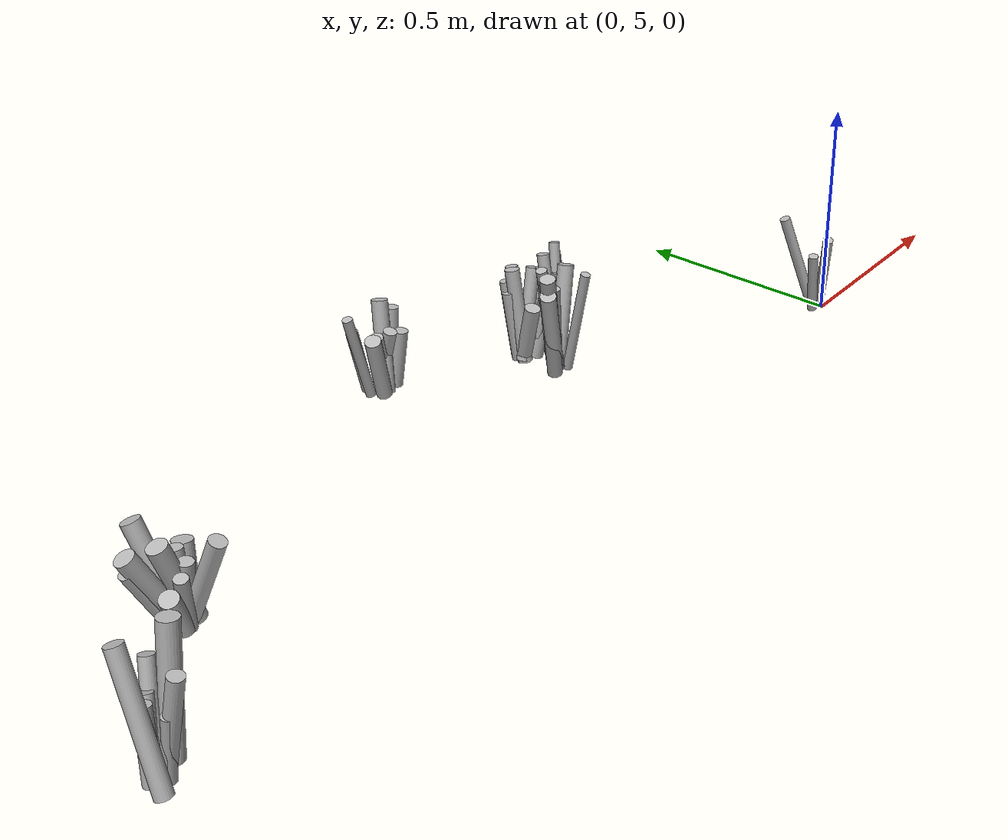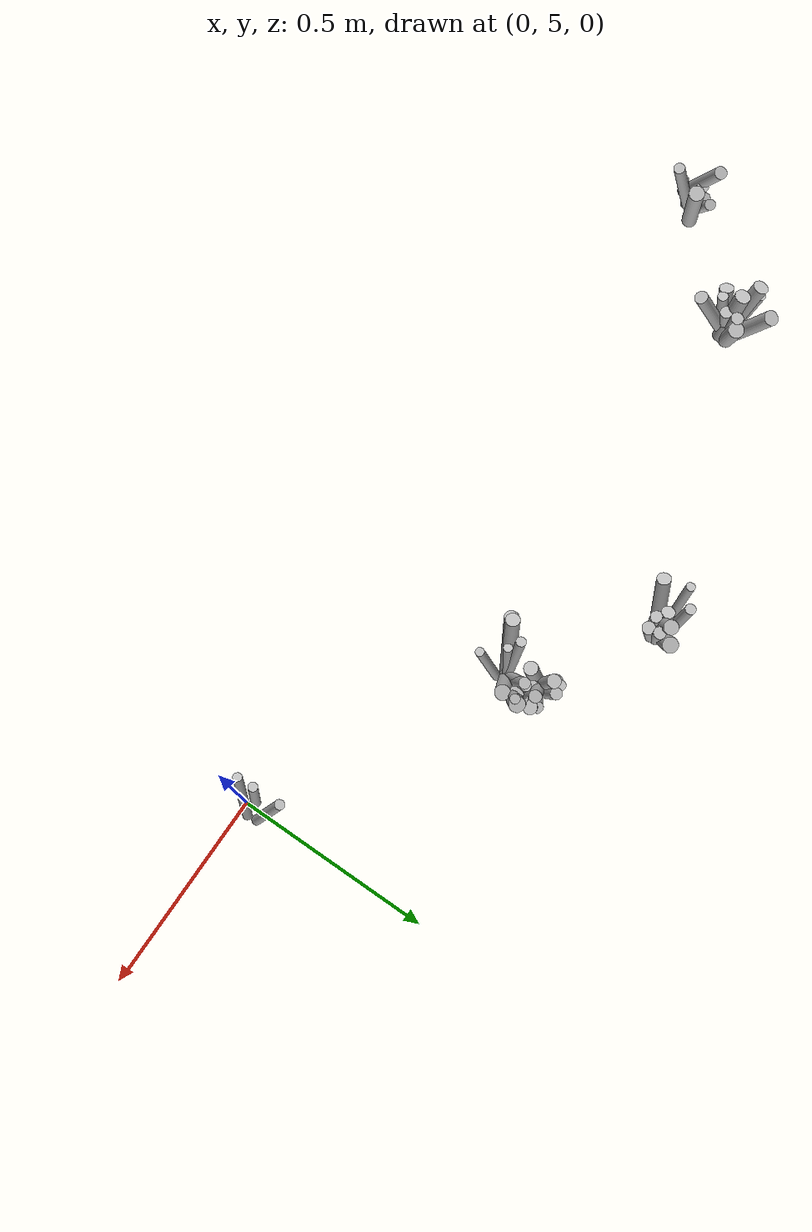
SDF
<sdf version="1.6">
 <world name="default">
  <model name="tussocks">
   <static>true</static>
   <link name="tuft11_0">
    <pose>-0.0070 5.0717 0.1087 0 0.3280 2.3232</pose>
    <visual name="tuft11_0_v">
     <geometry><cylinder><radius>0.0124</radius><length>0.2362</length></cylinder></geometry>
     <material>
      <script>
       <uri>model://bushfire/materials/scripts</uri>
       <uri>model://bushfire/materials/textures</uri>
       <name>Bushfire/Foliage2</name>
      </script>
     </material>
    </visual>
   </link>
   <link name="tuft11_5">
    <pose>-0.0038 5.0002 0.0973 0 0.3164 3.7831</pose>
    <visual name="tuft11_5_v">
     <geometry><cylinder><radius>0.0117</radius><length>0.2114</length></cylinder></geometry>
     <material>
      <script>
       <uri>model://bushfire/materials/scripts</uri>
       <uri>model://bushfire/materials/textures</uri>
       <name>Bushfire/Tussock</name>
      </script>
     </material>
    </visual>
   </link>
   <link name="tuft11_10">
    <pose>-0.0233 5.0163 0.0705 0 0.1381 3.3470</pose>
    <visual name="tuft11_10_v">
     <geometry><cylinder><radius>0.0118</radius><length>0.1532</length></cylinder></geometry>
     <material>
      <script>
       <uri>model://bushfire/materials/scripts</uri>
       <uri>model://bushfire/materials/textures</uri>
       <name>Bushfire/Foliage2</name>
      </script>
     </material>
    </visual>
   </link>
   <link name="tuft13_0">
    <pose>-1.6560 5.2935 0.0613 0 0.1201 5.4961</pose>
    <visual name="tuft13_0_v">
     <geometry><cylinder><radius>0.0158</radius><length>0.1332</length></cylinder></geometry>
     <material>
      <script>
       <uri>model://bushfire/materials/scripts</uri>
       <uri>model://bushfire/materials/textures</uri>
       <name>Bushfire/Tussock</name>
      </script>
     </material>
    </visual>
   </link>
   <link name="tuft13_1">
    <pose>-1.6664 5.2997 0.0851 0 0.2339 2.9496</pose>
    <visual name="tuft13_1_v">
     <geometry><cylinder><radius>0.0200</radius><length>0.1849</length></cylinder></geometry>
     <material>
      <script>
       <uri>model://bushfire/materials/scripts</uri>
       <uri>model://bushfire/materials/textures</uri>
       <name>Bushfire/Foliage2</name>
      </script>
     </material>
    </visual>
   </link>
   <link name="tuft13_2">
    <pose>-1.6322 5.3239 0.0651 0 0.2160 0.7160</pose>
    <visual name="tuft13_2_v">
     <geometry><cylinder><radius>0.0198</radius><length>0.1416</length></cylinder></geometry>
     <material>
      <script>
       <uri>model://bushfire/materials/scripts</uri>
       <uri>model://bushfire/materials/textures</uri>
       <name>Bushfire/Foliage2</name>
      </script>
     </material>
    </visual>
   </link>
   <link name="tuft13_3">
    <pose>-1.6973 5.2674 0.0534 0 0.4145 3.8553</pose>
    <visual name="tuft13_3_v">
     <geometry><cylinder><radius>0.0183</radius><length>0.1162</length></cylinder></geometry>
     <material>
      <script>
       <uri>model://bushfire/materials/scripts</uri>
       <uri>model://bushfire/materials/textures</uri>
       <name>Bushfire/Tussock</name>
      </script>
     </material>
    </visual>
   </link>
   <link name="tuft13_4">
    <pose>-1.7075 5.3191 0.0684 0 0.3843 2.7265</pose>
    <visual name="tuft13_4_v">
     <geometry><cylinder><radius>0.0184</radius><length>0.1487</length></cylinder></geometry>
     <material>
      <script>
       <uri>model://bushfire/materials/scripts</uri>
       <uri>model://bushfire/materials/textures</uri>
       <name>Bushfire/Foliage2</name>
      </script>
     </material>
    </visual>
   </link>
   <link name="tuft13_5">
    <pose>-1.6549 5.3085 0.0635 0 0.2851 1.0005</pose>
    <visual name="tuft13_5_v">
     <geometry><cylinder><radius>0.0128</radius><length>0.1381</length></cylinder></geometry>
     <material>
      <script>
       <uri>model://bushfire/materials/scripts</uri>
       <uri>model://bushfire/materials/textures</uri>
       <name>Bushfire/Tussock</name>
      </script>
     </material>
    </visual>
   </link>
   <link name="tuft13_6">
    <pose>-1.6519 5.3123 0.0672 0 0.1304 0.9742</pose>
    <visual name="tuft13_6_v">
     <geometry><cylinder><radius>0.0157</radius><length>0.1461</length></cylinder></geometry>
     <material>
      <script>
       <uri>model://bushfire/materials/scripts</uri>
       <uri>model://bushfire/materials/textures</uri>
       <name>Bushfire/Tussock</name>
      </script>
     </material>
    </visual>
   </link>
   <link name="tuft13_7">
    <pose>-1.6764 5.2698 0.0610 0 0.1987 4.2251</pose>
    <visual name="tuft13_7_v">
     <geometry><cylinder><radius>0.0136</radius><length>0.1325</length></cylinder></geometry>
     <material>
      <script>
       <uri>model://bushfire/materials/scripts</uri>
       <uri>model://bushfire/materials/textures</uri>
       <name>Bushfire/Foliage2</name>
      </script>
     </material>
    </visual>
   </link>
   <link name="tuft13_8">
    <pose>-1.7041 5.3151 0.0845 0 0.3787 2.7772</pose>
    <visual name="tuft13_8_v">
     <geometry><cylinder><radius>0.0196</radius><length>0.1837</length></cylinder></geometry>
     <material>
      <script>
       <uri>model://bushfire/materials/scripts</uri>
       <uri>model://bushfire/materials/textures</uri>
       <name>Bushfire/Foliage2</name>
      </script>
     </material>
    </visual>
   </link>
   <link name="tuft13_9">
    <pose>-1.6700 5.3560 0.0903 0 0.3757 1.7237</pose>
    <visual name="tuft13_9_v">
     <geometry><cylinder><radius>0.0192</radius><length>0.1963</length></cylinder></geometry>
     <material>
      <script>
       <uri>model://bushfire/materials/scripts</uri>
       <uri>model://bushfire/materials/textures</uri>
       <name>Bushfire/Tussock</name>
      </script>
     </material>
    </visual>
   </link>
   <link name="tuft13_10">
    <pose>-1.6410 5.2581 0.0934 0 0.4136 5.1734</pose>
    <visual name="tuft13_10_v">
     <geometry><cylinder><radius>0.0170</radius><length>0.2030</length></cylinder></geometry>
     <material>
      <script>
       <uri>model://bushfire/materials/scripts</uri>
       <uri>model://bushfire/materials/textures</uri>
       <name>Bushfire/Tussock</name>
      </script>
     </material>
    </visual>
   </link>
   <link name="tuft39_0">
    <pose>-1.8485 5.0653 0.1178 0 0.2059 0.2738</pose>
    <visual name="tuft39_0_v">
     <geometry><cylinder><radius>0.0192</radius><length>0.2561</length></cylinder></geometry>
     <material>
      <script>
       <uri>model://bushfire/materials/scripts</uri>
       <uri>model://bushfire/materials/textures</uri>
       <name>Bushfire/Tussock</name>
      </script>
     </material>
    </visual>
   </link>
   <link name="tuft39_1">
    <pose>-1.8797 5.0810 0.0854 0 0.4048 0.7331</pose>
    <visual name="tuft39_1_v">
     <geometry><cylinder><radius>0.0138</radius><length>0.1857</length></cylinder></geometry>
     <material>
      <script>
       <uri>model://bushfire/materials/scripts</uri>
       <uri>model://bushfire/materials/textures</uri>
       <name>Bushfire/Foliage2</name>
      </script>
     </material>
    </visual>
   </link>
   <link name="tuft39_3">
    <pose>-1.8986 5.0169 0.0636 0 0.1392 5.3379</pose>
    <visual name="tuft39_3_v">
     <geometry><cylinder><radius>0.0113</radius><length>0.1382</length></cylinder></geometry>
     <material>
      <script>
       <uri>model://bushfire/materials/scripts</uri>
       <uri>model://bushfire/materials/textures</uri>
       <name>Bushfire/Tussock</name>
      </script>
     </material>
    </visual>
   </link>
   <link name="tuft39_5">
    <pose>-1.8905 5.0129 0.1006 0 0.2256 5.4359</pose>
    <visual name="tuft39_5_v">
     <geometry><cylinder><radius>0.0145</radius><length>0.2187</length></cylinder></geometry>
     <material>
      <script>
       <uri>model://bushfire/materials/scripts</uri>
       <uri>model://bushfire/materials/textures</uri>
       <name>Bushfire/Tussock</name>
      </script>
     </material>
    </visual>
   </link>
   <link name="tuft39_6">
    <pose>-1.9030 5.0602 0.0650 0 0.4178 0.7350</pose>
    <visual name="tuft39_6_v">
     <geometry><cylinder><radius>0.0128</radius><length>0.1414</length></cylinder></geometry>
     <material>
      <script>
       <uri>model://bushfire/materials/scripts</uri>
       <uri>model://bushfire/materials/textures</uri>
       <name>Bushfire/Tussock</name>
      </script>
     </material>
    </visual>
   </link>
   <link name="tuft39_8">
    <pose>-1.9188 5.0469 0.1179 0 0.3639 1.2949</pose>
    <visual name="tuft39_8_v">
     <geometry><cylinder><radius>0.0163</radius><length>0.2563</length></cylinder></geometry>
     <material>
      <script>
       <uri>model://bushfire/materials/scripts</uri>
       <uri>model://bushfire/materials/textures</uri>
       <name>Bushfire/Foliage2</name>
      </script>
     </material>
    </visual>
   </link>
   <link name="tuft39_9">
    <pose>-1.9148 5.0489 0.0645 0 0.2121 0.6577</pose>
    <visual name="tuft39_9_v">
     <geometry><cylinder><radius>0.0151</radius><length>0.1403</length></cylinder></geometry>
     <material>
      <script>
       <uri>model://bushfire/materials/scripts</uri>
       <uri>model://bushfire/materials/textures</uri>
       <name>Bushfire/Foliage2</name>
      </script>
     </material>
    </visual>
   </link>
   <link name="tuft88_0">
    <pose>-0.9021 5.5835 0.0687 0 0.2844 4.9180</pose>
    <visual name="tuft88_0_v">
     <geometry><cylinder><radius>0.0150</radius><length>0.1493</length></cylinder></geometry>
     <material>
      <script>
       <uri>model://bushfire/materials/scripts</uri>
       <uri>model://bushfire/materials/textures</uri>
       <name>Bushfire/Tussock</name>
      </script>
     </material>
    </visual>
   </link>
   <link name="tuft88_1">
    <pose>-0.9059 5.5838 0.0579 0 0.2483 3.4301</pose>
    <visual name="tuft88_1_v">
     <geometry><cylinder><radius>0.0128</radius><length>0.1259</length></cylinder></geometry>
     <material>
      <script>
       <uri>model://bushfire/materials/scripts</uri>
       <uri>model://bushfire/materials/textures</uri>
       <name>Bushfire/Foliage2</name>
      </script>
     </material>
    </visual>
   </link>
   <link name="tuft88_2">
    <pose>-0.9479 5.6141 0.0705 0 0.1448 2.5699</pose>
    <visual name="tuft88_2_v">
     <geometry><cylinder><radius>0.0136</radius><length>0.1532</length></cylinder></geometry>
     <material>
      <script>
       <uri>model://bushfire/materials/scripts</uri>
       <uri>model://bushfire/materials/textures</uri>
       <name>Bushfire/Tussock</name>
      </script>
     </material>
    </visual>
   </link>
   <link name="tuft88_3">
    <pose>-0.9083 5.5837 0.0632 0 0.2595 3.3340</pose>
    <visual name="tuft88_3_v">
     <geometry><cylinder><radius>0.0171</radius><length>0.1374</length></cylinder></geometry>
     <material>
      <script>
       <uri>model://bushfire/materials/scripts</uri>
       <uri>model://bushfire/materials/textures</uri>
       <name>Bushfire/Foliage2</name>
      </script>
     </material>
    </visual>
   </link>
   <link name="tuft88_4">
    <pose>-0.9013 5.5859 0.0967 0 0.2784 0.7946</pose>
    <visual name="tuft88_4_v">
     <geometry><cylinder><radius>0.0182</radius><length>0.2101</length></cylinder></geometry>
     <material>
      <script>
       <uri>model://bushfire/materials/scripts</uri>
       <uri>model://bushfire/materials/textures</uri>
       <name>Bushfire/Foliage2</name>
      </script>
     </material>
    </visual>
   </link>
   <link name="tuft88_5">
    <pose>-0.8770 5.5688 0.0624 0 0.1710 5.7186</pose>
    <visual name="tuft88_5_v">
     <geometry><cylinder><radius>0.0163</radius><length>0.1356</length></cylinder></geometry>
     <material>
      <script>
       <uri>model://bushfire/materials/scripts</uri>
       <uri>model://bushfire/materials/textures</uri>
       <name>Bushfire/Foliage2</name>
      </script>
     </material>
    </visual>
   </link>
   <link name="tuft88_6">
    <pose>-0.8772 5.6079 0.0755 0 0.3577 0.7417</pose>
    <visual name="tuft88_6_v">
     <geometry><cylinder><radius>0.0196</radius><length>0.1641</length></cylinder></geometry>
     <material>
      <script>
       <uri>model://bushfire/materials/scripts</uri>
       <uri>model://bushfire/materials/textures</uri>
       <name>Bushfire/Foliage2</name>
      </script>
     </material>
    </visual>
   </link>
   <link name="tuft88_7">
    <pose>-0.9550 5.5464 0.0815 0 0.3427 3.7728</pose>
    <visual name="tuft88_7_v">
     <geometry><cylinder><radius>0.0178</radius><length>0.1772</length></cylinder></geometry>
     <material>
      <script>
       <uri>model://bushfire/materials/scripts</uri>
       <uri>model://bushfire/materials/textures</uri>
       <name>Bushfire/Tussock</name>
      </script>
     </material>
    </visual>
   </link>
   <link name="tuft88_8">
    <pose>-0.9682 5.5904 0.0967 0 0.1934 3.0573</pose>
    <visual name="tuft88_8_v">
     <geometry><cylinder><radius>0.0114</radius><length>0.2102</length></cylinder></geometry>
     <material>
      <script>
       <uri>model://bushfire/materials/scripts</uri>
       <uri>model://bushfire/materials/textures</uri>
       <name>Bushfire/Tussock</name>
      </script>
     </material>
    </visual>
   </link>
   <link name="tuft88_9">
    <pose>-0.8743 5.5895 0.0847 0 0.1529 0.1627</pose>
    <visual name="tuft88_9_v">
     <geometry><cylinder><radius>0.0152</radius><length>0.1841</length></cylinder></geometry>
     <material>
      <script>
       <uri>model://bushfire/materials/scripts</uri>
       <uri>model://bushfire/materials/textures</uri>
       <name>Bushfire/Foliage2</name>
      </script>
     </material>
    </visual>
   </link>
   <link name="tuft92_0">
    <pose>-0.6513 5.3110 0.1118 0 0.3466 3.6908</pose>
    <visual name="tuft92_0_v">
     <geometry><cylinder><radius>0.0177</radius><length>0.2431</length></cylinder></geometry>
     <material>
      <script>
       <uri>model://bushfire/materials/scripts</uri>
       <uri>model://bushfire/materials/textures</uri>
       <name>Bushfire/Tussock</name>
      </script>
     </material>
    </visual>
   </link>
   <link name="tuft92_1">
    <pose>-0.5562 5.3835 0.1112 0 0.3666 0.7501</pose>
    <visual name="tuft92_1_v">
     <geometry><cylinder><radius>0.0198</radius><length>0.2418</length></cylinder></geometry>
     <material>
      <script>
       <uri>model://bushfire/materials/scripts</uri>
       <uri>model://bushfire/materials/textures</uri>
       <name>Bushfire/Tussock</name>
      </script>
     </material>
    </visual>
   </link>
   <link name="tuft92_2">
    <pose>-0.6182 5.3421 0.1235 0 0.1992 3.1225</pose>
    <visual name="tuft92_2_v">
     <geometry><cylinder><radius>0.0125</radius><length>0.2684</length></cylinder></geometry>
     <material>
      <script>
       <uri>model://bushfire/materials/scripts</uri>
       <uri>model://bushfire/materials/textures</uri>
       <name>Bushfire/Tussock</name>
      </script>
     </material>
    </visual>
   </link>
   <link name="tuft92_3">
    <pose>-0.6510 5.3131 0.1261 0 0.2097 3.6632</pose>
    <visual name="tuft92_3_v">
     <geometry><cylinder><radius>0.0174</radius><length>0.2742</length></cylinder></geometry>
     <material>
      <script>
       <uri>model://bushfire/materials/scripts</uri>
       <uri>model://bushfire/materials/textures</uri>
       <name>Bushfire/Foliage2</name>
      </script>
     </material>
    </visual>
   </link>
   <link name="tuft92_4">
    <pose>-0.5803 5.3879 0.1035 0 0.1725 1.1480</pose>
    <visual name="tuft92_4_v">
     <geometry><cylinder><radius>0.0129</radius><length>0.2250</length></cylinder></geometry>
     <material>
      <script>
       <uri>model://bushfire/materials/scripts</uri>
       <uri>model://bushfire/materials/textures</uri>
       <name>Bushfire/Tussock</name>
      </script>
     </material>
    </visual>
   </link>
   <link name="tuft92_5">
    <pose>-0.5851 5.3731 0.1206 0 0.2471 1.0998</pose>
    <visual name="tuft92_5_v">
     <geometry><cylinder><radius>0.0140</radius><length>0.2621</length></cylinder></geometry>
     <material>
      <script>
       <uri>model://bushfire/materials/scripts</uri>
       <uri>model://bushfire/materials/textures</uri>
       <name>Bushfire/Foliage2</name>
      </script>
     </material>
    </visual>
   </link>
   <link name="tuft92_6">
    <pose>-0.6105 5.3338 0.1005 0 0.1723 3.8386</pose>
    <visual name="tuft92_6_v">
     <geometry><cylinder><radius>0.0111</radius><length>0.2186</length></cylinder></geometry>
     <material>
      <script>
       <uri>model://bushfire/materials/scripts</uri>
       <uri>model://bushfire/materials/textures</uri>
       <name>Bushfire/Foliage2</name>
      </script>
     </material>
    </visual>
   </link>
   <link name="tuft92_7">
    <pose>-0.5575 5.3786 0.1269 0 0.3001 0.7016</pose>
    <visual name="tuft92_7_v">
     <geometry><cylinder><radius>0.0121</radius><length>0.2759</length></cylinder></geometry>
     <material>
      <script>
       <uri>model://bushfire/materials/scripts</uri>
       <uri>model://bushfire/materials/textures</uri>
       <name>Bushfire/Tussock</name>
      </script>
     </material>
    </visual>
   </link>
   <link name="tuft92_8">
    <pose>-0.5912 5.3626 0.1056 0 0.3174 1.1313</pose>
    <visual name="tuft92_8_v">
     <geometry><cylinder><radius>0.0122</radius><length>0.2295</length></cylinder></geometry>
     <material>
      <script>
       <uri>model://bushfire/materials/scripts</uri>
       <uri>model://bushfire/materials/textures</uri>
       <name>Bushfire/Foliage2</name>
      </script>
     </material>
    </visual>
   </link>
   <link name="tuft92_9">
    <pose>-0.5832 5.2975 0.1149 0 0.1871 5.0930</pose>
    <visual name="tuft92_9_v">
     <geometry><cylinder><radius>0.0110</radius><length>0.2497</length></cylinder></geometry>
     <material>
      <script>
       <uri>model://bushfire/materials/scripts</uri>
       <uri>model://bushfire/materials/textures</uri>
       <name>Bushfire/Foliage2</name>
      </script>
     </material>
    </visual>
   </link>
   <link name="tuft92_10">
    <pose>-0.5651 5.3560 0.1060 0 0.3355 0.3754</pose>
    <visual name="tuft92_10_v">
     <geometry><cylinder><radius>0.0188</radius><length>0.2305</length></cylinder></geometry>
     <material>
      <script>
       <uri>model://bushfire/materials/scripts</uri>
       <uri>model://bushfire/materials/textures</uri>
       <name>Bushfire/Foliage2</name>
      </script>
     </material>
    </visual>
   </link>
   <link name="tuft92_11">
    <pose>-0.5625 5.3963 0.0709 0 0.1977 0.9561</pose>
    <visual name="tuft92_11_v">
     <geometry><cylinder><radius>0.0161</radius><length>0.1542</length></cylinder></geometry>
     <material>
      <script>
       <uri>model://bushfire/materials/scripts</uri>
       <uri>model://bushfire/materials/textures</uri>
       <name>Bushfire/Foliage2</name>
      </script>
     </material>
    </visual>
   </link>
   <link name="tuft158_0">
    <pose>-0.6098 5.4520 0.1001 0 0.2188 1.0781</pose>
    <visual name="tuft158_0_v">
     <geometry><cylinder><radius>0.0146</radius><length>0.2176</length></cylinder></geometry>
     <material>
      <script>
       <uri>model://bushfire/materials/scripts</uri>
       <uri>model://bushfire/materials/textures</uri>
       <name>Bushfire/Tussock</name>
      </script>
     </material>
    </visual>
   </link>
   <link name="tuft158_1">
    <pose>-0.6260 5.4548 0.0872 0 0.1529 1.5220</pose>
    <visual name="tuft158_1_v">
     <geometry><cylinder><radius>0.0130</radius><length>0.1896</length></cylinder></geometry>
     <material>
      <script>
       <uri>model://bushfire/materials/scripts</uri>
       <uri>model://bushfire/materials/textures</uri>
       <name>Bushfire/Tussock</name>
      </script>
     </material>
    </visual>
   </link>
   <link name="tuft158_2">
    <pose>-0.5732 5.4030 0.0963 0 0.2704 6.0069</pose>
    <visual name="tuft158_2_v">
     <geometry><cylinder><radius>0.0189</radius><length>0.2093</length></cylinder></geometry>
     <material>
      <script>
       <uri>model://bushfire/materials/scripts</uri>
       <uri>model://bushfire/materials/textures</uri>
       <name>Bushfire/Tussock</name>
      </script>
     </material>
    </visual>
   </link>
   <link name="tuft158_3">
    <pose>-0.6276 5.4043 0.0676 0 0.2332 4.7251</pose>
    <visual name="tuft158_3_v">
     <geometry><cylinder><radius>0.0179</radius><length>0.1470</length></cylinder></geometry>
     <material>
      <script>
       <uri>model://bushfire/materials/scripts</uri>
       <uri>model://bushfire/materials/textures</uri>
       <name>Bushfire/Foliage2</name>
      </script>
     </material>
    </visual>
   </link>
   <link name="tuft158_4">
    <pose>-0.5667 5.4146 0.0802 0 0.3610 6.2204</pose>
    <visual name="tuft158_4_v">
     <geometry><cylinder><radius>0.0136</radius><length>0.1743</length></cylinder></geometry>
     <material>
      <script>
       <uri>model://bushfire/materials/scripts</uri>
       <uri>model://bushfire/materials/textures</uri>
       <name>Bushfire/Tussock</name>
      </script>
     </material>
    </visual>
   </link>
   <link name="tuft158_5">
    <pose>-0.6130 5.4151 0.0547 0 0.2065 6.0570</pose>
    <visual name="tuft158_5_v">
     <geometry><cylinder><radius>0.0121</radius><length>0.1189</length></cylinder></geometry>
     <material>
      <script>
       <uri>model://bushfire/materials/scripts</uri>
       <uri>model://bushfire/materials/textures</uri>
       <name>Bushfire/Tussock</name>
      </script>
     </material>
    </visual>
   </link>
   <link name="tuft158_6">
    <pose>-0.6312 5.4435 0.0773 0 0.1273 1.7062</pose>
    <visual name="tuft158_6_v">
     <geometry><cylinder><radius>0.0155</radius><length>0.1680</length></cylinder></geometry>
     <material>
      <script>
       <uri>model://bushfire/materials/scripts</uri>
       <uri>model://bushfire/materials/textures</uri>
       <name>Bushfire/Foliage2</name>
      </script>
     </material>
    </visual>
   </link>
   <link name="tuft158_7">
    <pose>-0.5863 5.4023 0.0708 0 0.2319 5.9108</pose>
    <visual name="tuft158_7_v">
     <geometry><cylinder><radius>0.0135</radius><length>0.1540</length></cylinder></geometry>
     <material>
      <script>
       <uri>model://bushfire/materials/scripts</uri>
       <uri>model://bushfire/materials/textures</uri>
       <name>Bushfire/Foliage2</name>
      </script>
     </material>
    </visual>
   </link>
   <link name="tuft158_8">
    <pose>-0.5795 5.4416 0.0569 0 0.3024 0.4457</pose>
    <visual name="tuft158_8_v">
     <geometry><cylinder><radius>0.0147</radius><length>0.1238</length></cylinder></geometry>
     <material>
      <script>
       <uri>model://bushfire/materials/scripts</uri>
       <uri>model://bushfire/materials/textures</uri>
       <name>Bushfire/Foliage2</name>
      </script>
     </material>
    </visual>
   </link>
   <link name="tuft158_9">
    <pose>-0.5627 5.4340 0.0647 0 0.1807 0.2338</pose>
    <visual name="tuft158_9_v">
     <geometry><cylinder><radius>0.0174</radius><length>0.1407</length></cylinder></geometry>
     <material>
      <script>
       <uri>model://bushfire/materials/scripts</uri>
       <uri>model://bushfire/materials/textures</uri>
       <name>Bushfire/Foliage2</name>
      </script>
     </material>
    </visual>
   </link>
   <link name="tuft158_10">
    <pose>-0.6238 5.4338 0.1026 0 0.1781 1.3123</pose>
    <visual name="tuft158_10_v">
     <geometry><cylinder><radius>0.0169</radius><length>0.2230</length></cylinder></geometry>
     <material>
      <script>
       <uri>model://bushfire/materials/scripts</uri>
       <uri>model://bushfire/materials/textures</uri>
       <name>Bushfire/Foliage2</name>
      </script>
     </material>
    </visual>
   </link>
   <link name="tuft158_11">
    <pose>-0.6006 5.4265 0.0998 0 0.3315 0.2872</pose>
    <visual name="tuft158_11_v">
     <geometry><cylinder><radius>0.0155</radius><length>0.2170</length></cylinder></geometry>
     <material>
      <script>
       <uri>model://bushfire/materials/scripts</uri>
       <uri>model://bushfire/materials/textures</uri>
       <name>Bushfire/Tussock</name>
      </script>
     </material>
    </visual>
   </link>
  </model>
 </world>
</sdf>
